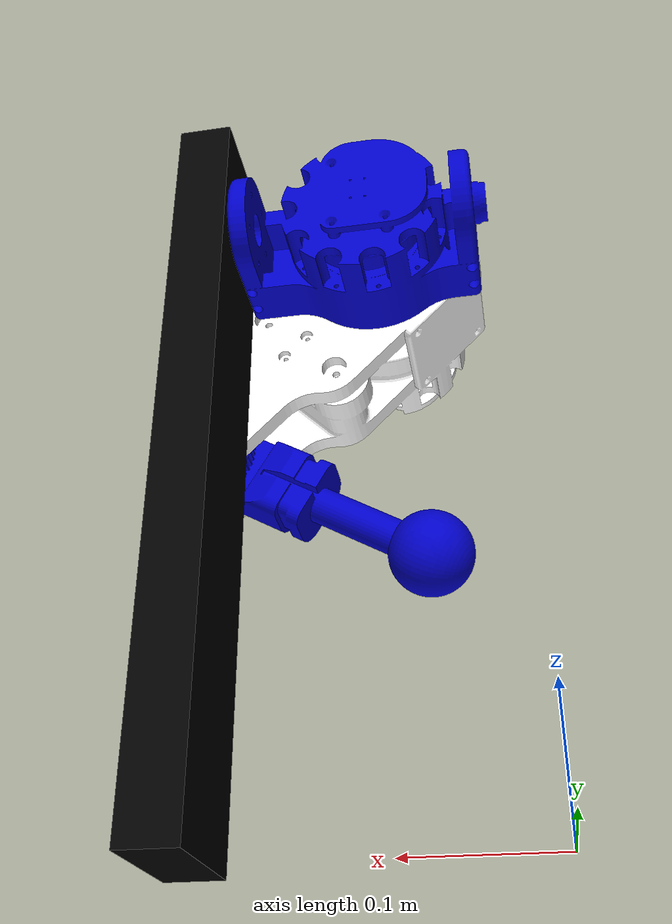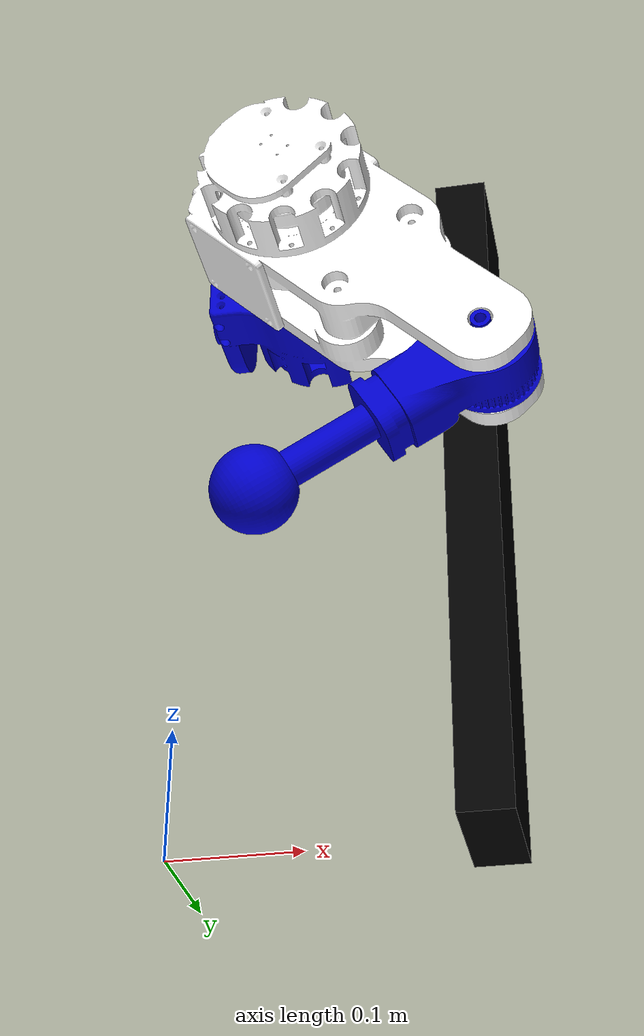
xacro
<?xml version="1.0" ?>
<robot name="openleg" xmlns:xacro="http://www.ros.org/wiki/xacro">

<!-- Configuration of Robot Links-->

<xacro:include filename="$(find openleg_description)/urdf/openleg_urdf_links.xacro" />

<!-- Configuration of Robot Joints-->

<xacro:include filename="$(find openleg_description)/urdf/openleg_urdf_joints.xacro" />

<!-- Configuration of Ros2_control-->

<xacro:include filename="$(find openleg_description)/urdf/openleg_ros2_control_plugin.xacro" />

<!-- Other Configurations-->

<xacro:include filename="$(find openleg_description)/urdf/openleg.trans" />
<xacro:include filename="$(find openleg_description)/urdf/openleg.gazebo" />

</robot>

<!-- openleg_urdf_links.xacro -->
<robot name="openleg" xmlns:xacro="http://www.ros.org/wiki/xacro">

<xacro:include filename="$(find openleg_description)/urdf/materials.xacro" />

<!-- Robot Links -->

<link name="world"/>
<link name="base_link">
  <inertial>
    <origin xyz="0.23006009905931069 0.002523516468143942 0.2743774253947221" rpy="0 0 0"/>
    <mass value="16.35574457196339"/>
    <inertia ixx="0.423815" iyy="0.413679" izz="0.014473" ixy="7e-06" iyz="-7.7e-05" ixz="-0.000198"/>
  </inertial>
  <visual>
    <origin xyz="0 0 0" rpy="0 0 0"/>
    <geometry>
      <mesh filename="file://$(find openleg_description)/meshes/base_link.stl" scale="0.001 0.001 0.001"/>
    </geometry>
    <material name="black">
    	<color rgba="0.0 0.0 0.0 1.0"/>
    </material>
  </visual>
  <collision>
    <origin xyz="0 0 0" rpy="0 0 0"/>
    <geometry>
      <mesh filename="file://$(find openleg_description)/meshes/base_link.stl" scale="0.001 0.001 0.001"/>
    </geometry>
  </collision>
</link>

<link name="ul_middleleg_1">
  <inertial>
    <origin xyz="0.026551698428160478 -0.05472961115381941 -0.026878333417300282" rpy="0 0 0"/>
    <mass value="2.7"/>
    <inertia ixx="0.061226" iyy="0.085803" izz="0.061502" ixy="-0.005391" iyz="0.005035" ixz="0.027705"/>
  </inertial>
  <visual>
    <origin xyz="-0.11036 0.057948 -0.475622" rpy="0 0 0"/>
    <geometry>
      <mesh filename="file://$(find openleg_description)/meshes/ul_middleleg_1.stl" scale="0.001 0.001 0.001"/>
    </geometry>
    <material name="white">
    	<color rgba="1.0 1.0 1.0 1.0"/>
    </material>
  </visual>
  <collision>
    <origin xyz="-0.11036 0.057948 -0.475622" rpy="0 0 0"/>
    <geometry>
      <mesh filename="file://$(find openleg_description)/meshes/ul_middleleg_1.stl" scale="0.001 0.001 0.001"/>
    </geometry>
  </collision>
</link>

<link name="ul_lowerleg_1">
  <inertial>
    <origin xyz="-0.071567637225424 0.0402017553765599 -0.041323984480638565" rpy="0 0 0"/>
    <mass value="0.3"/>
    <inertia ixx="0.008622" iyy="0.029242" izz="0.022138" ixy="0.000174" iyz="0.000101" ixz="-0.011703"/>
  </inertial>
  <visual>
    <origin xyz="-0.251328 0.139948 -0.334654" rpy="0 0 0"/>
    <geometry>
      <mesh filename="file://$(find openleg_description)/meshes/ul_lowerleg_1.stl" scale="0.001 0.001 0.001"/>
    </geometry>
    <material name="blue">
    	<color rgba="0.0 0.0 0.8 1.0"/>
    </material>
  </visual>
  <collision>
    <origin xyz="-0.251328 0.139948 -0.334654" rpy="0 0 0"/>
    <geometry>
      <mesh filename="file://$(find openleg_description)/meshes/ul_lowerleg_1.stl" scale="0.001 0.001 0.001"/>
    </geometry>
  </collision>
</link>

<link name="ul_shoulder_1">
  <inertial>
    <origin xyz="-0.09797111464921032 -0.02210796079506646 0.00016369310134400905" rpy="0 0 0"/>
    <mass value="2.0"/>
    <inertia ixx="0.012737" iyy="0.027034" izz="0.026319" ixy="0.000689" iyz="-4.7e-05" ixz="1.2e-05"/>
  </inertial>
  <visual>
    <origin xyz="-0.21 -0.008412 -0.475622" rpy="0 0 0"/>
    <geometry>
      <mesh filename="file://$(find openleg_description)/meshes/ul_shoulder_1.stl" scale="0.001 0.001 0.001"/>
    </geometry>
    <material name="blue">
    	<color rgba="0.0 0.0 0.8 1.0"/>
    </material>
  </visual>
  <collision>
    <origin xyz="-0.21 -0.008412 -0.475622" rpy="0 0 0"/>
    <geometry>
      <mesh filename="file://$(find openleg_description)/meshes/ul_shoulder_1.stl" scale="0.001 0.001 0.001"/>
    </geometry>
  </collision>
</link>

</robot>

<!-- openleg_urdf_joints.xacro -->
<robot name="openleg" xmlns:xacro="http://www.ros.org/wiki/xacro">

<!-- Robot Joints -->

<joint name="fixed_to_world_joint" type="fixed">
  <origin xyz="0 0 0" rpy="0 0 0"/>
  <parent link="world"/>
  <child link="base_link"/>
</joint>

<joint name="ul_upperleg_to_shoulder" type="continuous">
  <origin xyz="-0.09964 -0.06636 0.0" rpy="0 0 0"/>
  <parent link="ul_shoulder_1"/>
  <child link="ul_middleleg_1"/>
  <axis xyz="-0.0 -1.0 0.0"/>
</joint>

<joint name="ul_lowerleg_to_upperleg" type="continuous">
  <origin xyz="0.140968 -0.082 -0.140968" rpy="0 0 0"/>
  <parent link="ul_middleleg_1"/>
  <child link="ul_lowerleg_1"/>
  <axis xyz="-0.0 -1.0 0.0"/>
</joint>

<joint name="ul_shoulder_to_base_link" type="revolute">
  <origin xyz="0.21 0.008412 0.475622" rpy="0 0 0"/>
  <parent link="base_link"/>
  <child link="ul_shoulder_1"/>
  <axis xyz="-1.0 0.0 0.0"/>
  <limit upper="0.349066" lower="-0.349066" effort="100" velocity="100"/>
</joint>

</robot>

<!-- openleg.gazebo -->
<robot name="openleg" xmlns:xacro="http://www.ros.org/wiki/xacro" >

<xacro:property name="body_color" value="Gazebo/Silver" />

<gazebo reference="base_link">
  <material>${body_color}</material>
  <self_collide>true</self_collide>
  <gravity>true</gravity>
</gazebo>

<gazebo reference="ul_middleleg_1">
  <material>${body_color}</material>
  <self_collide>true</self_collide>
</gazebo>

<gazebo reference="ul_lowerleg_1">
  <material>${body_color}</material>
  <self_collide>true</self_collide>
</gazebo>

<gazebo reference="ul_shoulder_1">
  <material>${body_color}</material>
  <self_collide>true</self_collide>
</gazebo>

</robot>
